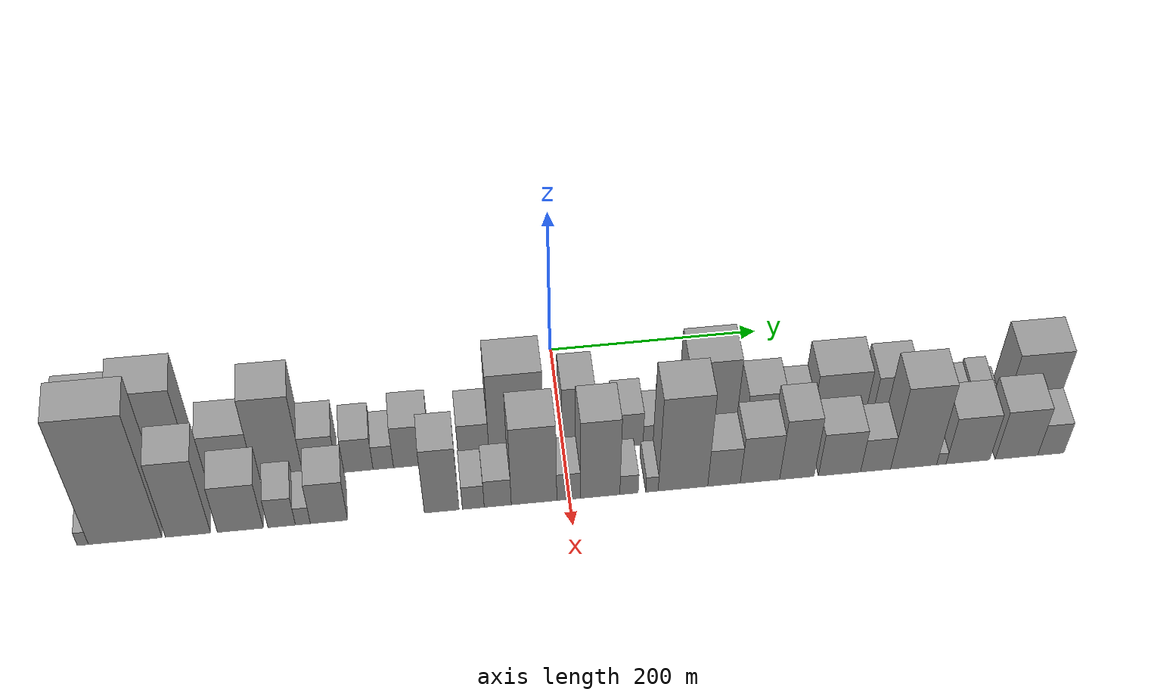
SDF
<sdf version="1.6">
 <world name="default">
  <scene>
   <sky><clouds><speed>12</speed></clouds></sky>
   <ambient>0.4 0.4 0.4 1</ambient>
   <background>0.7 0.7 0.7 1</background>
   <shadows>1</shadows>
  </scene>
  <gravity>0 0 -9.8066</gravity>
  <magnetic_field>6e-06 2.3e-05 -4.2e-05</magnetic_field>
  <physics default="0" name="default_physics" type="ode">
   <ode>
    <solver>
     <type>quick</type>
     <iters>10</iters>
     <sor>1.0</sor>
     <use_dynamic_moi_rescaling>0</use_dynamic_moi_rescaling>
    </solver>
    <constraints>
     <cfm>0</cfm>
     <erp>0.2</erp>
     <contact_max_correcting_vel>100</contact_max_correcting_vel>
     <contact_surface_layer>0.001</contact_surface_layer>
    </constraints>
   </ode>
   <max_step_size>0.004</max_step_size>
   <real_time_factor>1</real_time_factor>
   <real_time_update_rate>250</real_time_update_rate>
  </physics>
  <light name="sun" type="directional">
   <pose>0 0 10 0 0 0</pose>
   <diffuse>0.8 0.8 0.8 1</diffuse>
   <specular>0.2 0.2 0.2 1</specular>
   <attenuation>
    <range>1000</range>
    <constant>0.9</constant>
    <linear>0.01</linear>
    <quadratic>0.001</quadratic>
   </attenuation>
   <direction>-0.5 0.1 -0.9</direction>
  </light>
  <model name="building_1">
   <static>1</static>
   <pose>100.0000 -418.8661 0 0.000000 0.000000 0.000000</pose>
   <link name="link">
    <pose>0 0 66.00 0 0 0</pose>
    <collision name="collision"><geometry><box><size>40.0000 50.2677 132.0000</size></box></geometry></collision>
    <visual name="visual">
     <cast_shadows>0</cast_shadows>
     <geometry><box><size>40.0000 50.2677 132.0000</size></box></geometry>
     <material>
      <script>
       <uri>model://grey_wall/materials/scripts</uri>
       <uri>model://grey_wall/materials/textures</uri>
       <name>vrc/grey_wall</name>
      </script>
     </material>
    </visual>
   </link>
  </model>
  <model name="building_2">
   <static>1</static>
   <pose>100.0000 -366.1265 0 0.000000 0.000000 0.000000</pose>
   <link name="link">
    <pose>0 0 75.00 0 0 0</pose>
    <collision name="collision"><geometry><box><size>40.0000 55.2115 150.0000</size></box></geometry></collision>
    <visual name="visual">
     <cast_shadows>0</cast_shadows>
     <geometry><box><size>40.0000 55.2115 150.0000</size></box></geometry>
     <material>
      <script>
       <uri>model://grey_wall/materials/scripts</uri>
       <uri>model://grey_wall/materials/textures</uri>
       <name>vrc/grey_wall</name>
      </script>
     </material>
    </visual>
   </link>
  </model>
  <model name="building_3">
   <static>1</static>
   <pose>100.0000 -307.1990 0 0.000000 0.000000 0.000000</pose>
   <link name="link">
    <pose>0 0 37.50 0 0 0</pose>
    <collision name="collision"><geometry><box><size>40.0000 44.6435 75.0000</size></box></geometry></collision>
    <visual name="visual">
     <cast_shadows>0</cast_shadows>
     <geometry><box><size>40.0000 44.6435 75.0000</size></box></geometry>
     <material>
      <script>
       <uri>model://grey_wall/materials/scripts</uri>
       <uri>model://grey_wall/materials/textures</uri>
       <name>vrc/grey_wall</name>
      </script>
     </material>
    </visual>
   </link>
  </model>
  <model name="building_4">
   <static>1</static>
   <pose>100.0000 -262.8166 0 0.000000 0.000000 0.000000</pose>
   <link name="link">
    <pose>0 0 63.00 0 0 0</pose>
    <collision name="collision"><geometry><box><size>40.0000 44.1212 126.0000</size></box></geometry></collision>
    <visual name="visual">
     <cast_shadows>0</cast_shadows>
     <geometry><box><size>40.0000 44.1212 126.0000</size></box></geometry>
     <material>
      <script>
       <uri>model://grey_wall/materials/scripts</uri>
       <uri>model://grey_wall/materials/textures</uri>
       <name>vrc/grey_wall</name>
      </script>
     </material>
    </visual>
   </link>
  </model>
  <model name="building_5">
   <static>1</static>
   <pose>100.0000 -225.1736 0 0.000000 0.000000 0.000000</pose>
   <link name="link">
    <pose>0 0 30.00 0 0 0</pose>
    <collision name="collision"><geometry><box><size>40.0000 31.1647 60.0000</size></box></geometry></collision>
    <visual name="visual">
     <cast_shadows>0</cast_shadows>
     <geometry><box><size>40.0000 31.1647 60.0000</size></box></geometry>
     <material>
      <script>
       <uri>model://grey_wall/materials/scripts</uri>
       <uri>model://grey_wall/materials/textures</uri>
       <name>vrc/grey_wall</name>
      </script>
     </material>
    </visual>
   </link>
  </model>
  <model name="building_6">
   <static>1</static>
   <pose>100.0000 -190.0892 0 0.000000 0.000000 0.000000</pose>
   <link name="link">
    <pose>0 0 25.50 0 0 0</pose>
    <collision name="collision"><geometry><box><size>40.0000 27.0042 51.0000</size></box></geometry></collision>
    <visual name="visual">
     <cast_shadows>0</cast_shadows>
     <geometry><box><size>40.0000 27.0042 51.0000</size></box></geometry>
     <material>
      <script>
       <uri>model://grey_wall/materials/scripts</uri>
       <uri>model://grey_wall/materials/textures</uri>
       <name>vrc/grey_wall</name>
      </script>
     </material>
    </visual>
   </link>
  </model>
  <model name="building_7">
   <static>1</static>
   <pose>100.0000 -167.1637 0 0.000000 0.000000 0.000000</pose>
   <link name="link">
    <pose>0 0 18.00 0 0 0</pose>
    <collision name="collision"><geometry><box><size>40.0000 18.8467 36.0000</size></box></geometry></collision>
    <visual name="visual">
     <cast_shadows>0</cast_shadows>
     <geometry><box><size>40.0000 18.8467 36.0000</size></box></geometry>
     <material>
      <script>
       <uri>model://grey_wall/materials/scripts</uri>
       <uri>model://grey_wall/materials/textures</uri>
       <name>vrc/grey_wall</name>
      </script>
     </material>
    </visual>
   </link>
  </model>
  <model name="building_8">
   <static>1</static>
   <pose>100.0000 -140.6200 0 0.000000 0.000000 0.000000</pose>
   <link name="link">
    <pose>0 0 31.50 0 0 0</pose>
    <collision name="collision"><geometry><box><size>40.0000 34.2407 63.0000</size></box></geometry></collision>
    <visual name="visual">
     <cast_shadows>0</cast_shadows>
     <geometry><box><size>40.0000 34.2407 63.0000</size></box></geometry>
     <material>
      <script>
       <uri>model://grey_wall/materials/scripts</uri>
       <uri>model://grey_wall/materials/textures</uri>
       <name>vrc/grey_wall</name>
      </script>
     </material>
    </visual>
   </link>
  </model>
  <model name="building_9">
   <static>1</static>
   <pose>100.0000 -108.0192 0 0.000000 0.000000 0.000000</pose>
   <link name="link">
    <pose>0 0 12.00 0 0 0</pose>
    <collision name="collision"><geometry><box><size>40.0000 10.9609 24.0000</size></box></geometry></collision>
    <visual name="visual">
     <cast_shadows>0</cast_shadows>
     <geometry><box><size>40.0000 10.9609 24.0000</size></box></geometry>
     <material>
      <script>
       <uri>model://grey_wall/materials/scripts</uri>
       <uri>model://grey_wall/materials/textures</uri>
       <name>vrc/grey_wall</name>
      </script>
     </material>
    </visual>
   </link>
  </model>
  <model name="building_10">
   <static>1</static>
   <pose>100.0000 -83.2711 0 0.000000 0.000000 0.000000</pose>
   <link name="link">
    <pose>0 0 28.50 0 0 0</pose>
    <collision name="collision"><geometry><box><size>40.0000 28.5353 57.0000</size></box></geometry></collision>
    <visual name="visual">
     <cast_shadows>0</cast_shadows>
     <geometry><box><size>40.0000 28.5353 57.0000</size></box></geometry>
     <material>
      <script>
       <uri>model://grey_wall/materials/scripts</uri>
       <uri>model://grey_wall/materials/textures</uri>
       <name>vrc/grey_wall</name>
      </script>
     </material>
    </visual>
   </link>
  </model>
  <model name="building_11">
   <static>1</static>
   <pose>100.0000 -43.7940 0 0.000000 0.000000 0.000000</pose>
   <link name="link">
    <pose>0 0 64.50 0 0 0</pose>
    <collision name="collision"><geometry><box><size>40.0000 50.4190 129.0000</size></box></geometry></collision>
    <visual name="visual">
     <cast_shadows>0</cast_shadows>
     <geometry><box><size>40.0000 50.4190 129.0000</size></box></geometry>
     <material>
      <script>
       <uri>model://grey_wall/materials/scripts</uri>
       <uri>model://grey_wall/materials/textures</uri>
       <name>vrc/grey_wall</name>
      </script>
     </material>
    </visual>
   </link>
  </model>
  <model name="building_12">
   <static>1</static>
   <pose>100.0000 -13.0866 0 0.000000 0.000000 0.000000</pose>
   <link name="link">
    <pose>0 0 12.00 0 0 0</pose>
    <collision name="collision"><geometry><box><size>40.0000 10.9957 24.0000</size></box></geometry></collision>
    <visual name="visual">
     <cast_shadows>0</cast_shadows>
     <geometry><box><size>40.0000 10.9957 24.0000</size></box></geometry>
     <material>
      <script>
       <uri>model://grey_wall/materials/scripts</uri>
       <uri>model://grey_wall/materials/textures</uri>
       <name>vrc/grey_wall</name>
      </script>
     </material>
    </visual>
   </link>
  </model>
  <model name="building_13">
   <static>1</static>
   <pose>100.0000 13.6161 0 0.000000 0.000000 0.000000</pose>
   <link name="link">
    <pose>0 0 49.50 0 0 0</pose>
    <collision name="collision"><geometry><box><size>40.0000 30.4097 99.0000</size></box></geometry></collision>
    <visual name="visual">
     <cast_shadows>0</cast_shadows>
     <geometry><box><size>40.0000 30.4097 99.0000</size></box></geometry>
     <material>
      <script>
       <uri>model://grey_wall/materials/scripts</uri>
       <uri>model://grey_wall/materials/textures</uri>
       <name>vrc/grey_wall</name>
      </script>
     </material>
    </visual>
   </link>
  </model>
  <model name="building_14">
   <static>1</static>
   <pose>100.0000 37.8365 0 0.000000 0.000000 0.000000</pose>
   <link name="link">
    <pose>0 0 18.00 0 0 0</pose>
    <collision name="collision"><geometry><box><size>40.0000 18.0312 36.0000</size></box></geometry></collision>
    <visual name="visual">
     <cast_shadows>0</cast_shadows>
     <geometry><box><size>40.0000 18.0312 36.0000</size></box></geometry>
     <material>
      <script>
       <uri>model://grey_wall/materials/scripts</uri>
       <uri>model://grey_wall/materials/textures</uri>
       <name>vrc/grey_wall</name>
      </script>
     </material>
    </visual>
   </link>
  </model>
  <model name="building_15">
   <static>1</static>
   <pose>100.0000 60.6274 0 0.000000 0.000000 0.000000</pose>
   <link name="link">
    <pose>0 0 25.50 0 0 0</pose>
    <collision name="collision"><geometry><box><size>40.0000 27.5505 51.0000</size></box></geometry></collision>
    <visual name="visual">
     <cast_shadows>0</cast_shadows>
     <geometry><box><size>40.0000 27.5505 51.0000</size></box></geometry>
     <material>
      <script>
       <uri>model://grey_wall/materials/scripts</uri>
       <uri>model://grey_wall/materials/textures</uri>
       <name>vrc/grey_wall</name>
      </script>
     </material>
    </visual>
   </link>
  </model>
  <model name="building_16">
   <static>1</static>
   <pose>100.0000 82.7552 0 0.000000 0.000000 0.000000</pose>
   <link name="link">
    <pose>0 0 15.00 0 0 0</pose>
    <collision name="collision"><geometry><box><size>40.0000 16.7052 30.0000</size></box></geometry></collision>
    <visual name="visual">
     <cast_shadows>0</cast_shadows>
     <geometry><box><size>40.0000 16.7052 30.0000</size></box></geometry>
     <material>
      <script>
       <uri>model://grey_wall/materials/scripts</uri>
       <uri>model://grey_wall/materials/textures</uri>
       <name>vrc/grey_wall</name>
      </script>
     </material>
    </visual>
   </link>
  </model>
  <model name="building_17">
   <static>1</static>
   <pose>100.0000 101.9925 0 0.000000 0.000000 0.000000</pose>
   <link name="link">
    <pose>0 0 19.50 0 0 0</pose>
    <collision name="collision"><geometry><box><size>40.0000 21.7692 39.0000</size></box></geometry></collision>
    <visual name="visual">
     <cast_shadows>0</cast_shadows>
     <geometry><box><size>40.0000 21.7692 39.0000</size></box></geometry>
     <material>
      <script>
       <uri>model://grey_wall/materials/scripts</uri>
       <uri>model://grey_wall/materials/textures</uri>
       <name>vrc/grey_wall</name>
      </script>
     </material>
    </visual>
   </link>
  </model>
  <model name="building_18">
   <static>1</static>
   <pose>100.0000 136.7933 0 0.000000 0.000000 0.000000</pose>
   <link name="link">
    <pose>0 0 60.00 0 0 0</pose>
    <collision name="collision"><geometry><box><size>40.0000 47.8324 120.0000</size></box></geometry></collision>
    <visual name="visual">
     <cast_shadows>0</cast_shadows>
     <geometry><box><size>40.0000 47.8324 120.0000</size></box></geometry>
     <material>
      <script>
       <uri>model://grey_wall/materials/scripts</uri>
       <uri>model://grey_wall/materials/textures</uri>
       <name>vrc/grey_wall</name>
      </script>
     </material>
    </visual>
   </link>
  </model>
  <model name="building_19">
   <static>1</static>
   <pose>100.0000 188.5553 0 0.000000 0.000000 0.000000</pose>
   <link name="link">
    <pose>0 0 31.50 0 0 0</pose>
    <collision name="collision"><geometry><box><size>40.0000 35.6916 63.0000</size></box></geometry></collision>
    <visual name="visual">
     <cast_shadows>0</cast_shadows>
     <geometry><box><size>40.0000 35.6916 63.0000</size></box></geometry>
     <material>
      <script>
       <uri>model://grey_wall/materials/scripts</uri>
       <uri>model://grey_wall/materials/textures</uri>
       <name>vrc/grey_wall</name>
      </script>
     </material>
    </visual>
   </link>
  </model>
  <model name="building_20">
   <static>1</static>
   <pose>100.0000 219.6502 0 0.000000 0.000000 0.000000</pose>
   <link name="link">
    <pose>0 0 24.00 0 0 0</pose>
    <collision name="collision"><geometry><box><size>40.0000 26.4983 48.0000</size></box></geometry></collision>
    <visual name="visual">
     <cast_shadows>0</cast_shadows>
     <geometry><box><size>40.0000 26.4983 48.0000</size></box></geometry>
     <material>
      <script>
       <uri>model://grey_wall/materials/scripts</uri>
       <uri>model://grey_wall/materials/textures</uri>
       <name>vrc/grey_wall</name>
      </script>
     </material>
    </visual>
   </link>
  </model>
  <model name="building_21">
   <static>1</static>
   <pose>100.0000 257.8796 0 0.000000 0.000000 0.000000</pose>
   <link name="link">
    <pose>0 0 42.00 0 0 0</pose>
    <collision name="collision"><geometry><box><size>40.0000 49.9606 84.0000</size></box></geometry></collision>
    <visual name="visual">
     <cast_shadows>0</cast_shadows>
     <geometry><box><size>40.0000 49.9606 84.0000</size></box></geometry>
     <material>
      <script>
       <uri>model://grey_wall/materials/scripts</uri>
       <uri>model://grey_wall/materials/textures</uri>
       <name>vrc/grey_wall</name>
      </script>
     </material>
    </visual>
   </link>
  </model>
  <model name="building_22">
   <static>1</static>
   <pose>100.0000 308.6367 0 0.000000 0.000000 0.000000</pose>
   <link name="link">
    <pose>0 0 36.00 0 0 0</pose>
    <collision name="collision"><geometry><box><size>40.0000 37.5536 72.0000</size></box></geometry></collision>
    <visual name="visual">
     <cast_shadows>0</cast_shadows>
     <geometry><box><size>40.0000 37.5536 72.0000</size></box></geometry>
     <material>
      <script>
       <uri>model://grey_wall/materials/scripts</uri>
       <uri>model://grey_wall/materials/textures</uri>
       <name>vrc/grey_wall</name>
      </script>
     </material>
    </visual>
   </link>
  </model>
  <model name="building_23">
   <static>1</static>
   <pose>100.0000 347.7771 0 0.000000 0.000000 0.000000</pose>
   <link name="link">
    <pose>0 0 24.00 0 0 0</pose>
    <collision name="collision"><geometry><box><size>40.0000 28.7272 48.0000</size></box></geometry></collision>
    <visual name="visual">
     <cast_shadows>0</cast_shadows>
     <geometry><box><size>40.0000 28.7272 48.0000</size></box></geometry>
     <material>
      <script>
       <uri>model://grey_wall/materials/scripts</uri>
       <uri>model://grey_wall/materials/textures</uri>
       <name>vrc/grey_wall</name>
      </script>
     </material>
    </visual>
   </link>
  </model>
  <model name="building_24">
   <static>1</static>
   <pose>100.0000 374.4131 0 0.000000 0.000000 0.000000</pose>
   <link name="link">
    <pose>0 0 15.00 0 0 0</pose>
    <collision name="collision"><geometry><box><size>40.0000 16.5447 30.0000</size></box></geometry></collision>
    <visual name="visual">
     <cast_shadows>0</cast_shadows>
     <geometry><box><size>40.0000 16.5447 30.0000</size></box></geometry>
     <material>
      <script>
       <uri>model://grey_wall/materials/scripts</uri>
       <uri>model://grey_wall/materials/textures</uri>
       <name>vrc/grey_wall</name>
      </script>
     </material>
    </visual>
   </link>
  </model>
  <model name="building_25">
   <static>1</static>
   <pose>100.0000 393.1155 0 0.000000 0.000000 0.000000</pose>
   <link name="link">
    <pose>0 0 18.00 0 0 0</pose>
    <collision name="collision"><geometry><box><size>40.0000 20.8601 36.0000</size></box></geometry></collision>
    <visual name="visual">
     <cast_shadows>0</cast_shadows>
     <geometry><box><size>40.0000 20.8601 36.0000</size></box></geometry>
     <material>
      <script>
       <uri>model://grey_wall/materials/scripts</uri>
       <uri>model://grey_wall/materials/textures</uri>
       <name>vrc/grey_wall</name>
      </script>
     </material>
    </visual>
   </link>
  </model>
  <model name="building_26">
   <static>1</static>
   <pose>100.0000 407.8156 0 0.000000 0.000000 0.000000</pose>
   <link name="link">
    <pose>0 0 9.00 0 0 0</pose>
    <collision name="collision"><geometry><box><size>40.0000 8.5401 18.0000</size></box></geometry></collision>
    <visual name="visual">
     <cast_shadows>0</cast_shadows>
     <geometry><box><size>40.0000 8.5401 18.0000</size></box></geometry>
     <material>
      <script>
       <uri>model://grey_wall/materials/scripts</uri>
       <uri>model://grey_wall/materials/textures</uri>
       <name>vrc/grey_wall</name>
      </script>
     </material>
    </visual>
   </link>
  </model>
  <model name="building_27">
   <static>1</static>
   <pose>100.0000 443.5218 0 0.000000 0.000000 0.000000</pose>
   <link name="link">
    <pose>0 0 43.50 0 0 0</pose>
    <collision name="collision"><geometry><box><size>40.0000 50.8722 87.0000</size></box></geometry></collision>
    <visual name="visual">
     <cast_shadows>0</cast_shadows>
     <geometry><box><size>40.0000 50.8722 87.0000</size></box></geometry>
     <material>
      <script>
       <uri>model://grey_wall/materials/scripts</uri>
       <uri>model://grey_wall/materials/textures</uri>
       <name>vrc/grey_wall</name>
      </script>
     </material>
    </visual>
   </link>
  </model>
  <model name="building_28">
   <static>1</static>
   <pose>152.0000 -439.0589 0 0.000000 0.000000 0.000000</pose>
   <link name="link">
    <pose>0 0 10.50 0 0 0</pose>
    <collision name="collision"><geometry><box><size>40.0000 9.8821 21.0000</size></box></geometry></collision>
    <visual name="visual">
     <cast_shadows>0</cast_shadows>
     <geometry><box><size>40.0000 9.8821 21.0000</size></box></geometry>
     <material>
      <script>
       <uri>model://grey_wall/materials/scripts</uri>
       <uri>model://grey_wall/materials/textures</uri>
       <name>vrc/grey_wall</name>
      </script>
     </material>
    </visual>
   </link>
  </model>
  <model name="building_29">
   <static>1</static>
   <pose>152.0000 -401.3434 0 0.000000 0.000000 0.000000</pose>
   <link name="link">
    <pose>0 0 96.00 0 0 0</pose>
    <collision name="collision"><geometry><box><size>40.0000 65.5489 192.0000</size></box></geometry></collision>
    <visual name="visual">
     <cast_shadows>0</cast_shadows>
     <geometry><box><size>40.0000 65.5489 192.0000</size></box></geometry>
     <material>
      <script>
       <uri>model://grey_wall/materials/scripts</uri>
       <uri>model://grey_wall/materials/textures</uri>
       <name>vrc/grey_wall</name>
      </script>
     </material>
    </visual>
   </link>
  </model>
  <model name="building_30">
   <static>1</static>
   <pose>152.0000 -345.3657 0 0.000000 0.000000 0.000000</pose>
   <link name="link">
    <pose>0 0 58.50 0 0 0</pose>
    <collision name="collision"><geometry><box><size>40.0000 40.4066 117.0000</size></box></geometry></collision>
    <visual name="visual">
     <cast_shadows>0</cast_shadows>
     <geometry><box><size>40.0000 40.4066 117.0000</size></box></geometry>
     <material>
      <script>
       <uri>model://grey_wall/materials/scripts</uri>
       <uri>model://grey_wall/materials/textures</uri>
       <name>vrc/grey_wall</name>
      </script>
     </material>
    </visual>
   </link>
  </model>
  <model name="building_31">
   <static>1</static>
   <pose>152.0000 -298.5178 0 0.000000 0.000000 0.000000</pose>
   <link name="link">
    <pose>0 0 36.00 0 0 0</pose>
    <collision name="collision"><geometry><box><size>40.0000 41.2891 72.0000</size></box></geometry></collision>
    <visual name="visual">
     <cast_shadows>0</cast_shadows>
     <geometry><box><size>40.0000 41.2891 72.0000</size></box></geometry>
     <material>
      <script>
       <uri>model://grey_wall/materials/scripts</uri>
       <uri>model://grey_wall/materials/textures</uri>
       <name>vrc/grey_wall</name>
      </script>
     </material>
    </visual>
   </link>
  </model>
  <model name="building_32">
   <static>1</static>
   <pose>152.0000 -261.5021 0 0.000000 0.000000 0.000000</pose>
   <link name="link">
    <pose>0 0 22.50 0 0 0</pose>
    <collision name="collision"><geometry><box><size>40.0000 24.7425 45.0000</size></box></geometry></collision>
    <visual name="visual">
     <cast_shadows>0</cast_shadows>
     <geometry><box><size>40.0000 24.7425 45.0000</size></box></geometry>
     <material>
      <script>
       <uri>model://grey_wall/materials/scripts</uri>
       <uri>model://grey_wall/materials/textures</uri>
       <name>vrc/grey_wall</name>
      </script>
     </material>
    </visual>
   </link>
  </model>
  <model name="building_33">
   <static>1</static>
   <pose>152.0000 -242.4045 0 0.000000 0.000000 0.000000</pose>
   <link name="link">
    <pose>0 0 13.50 0 0 0</pose>
    <collision name="collision"><geometry><box><size>40.0000 13.4527 27.0000</size></box></geometry></collision>
    <visual name="visual">
     <cast_shadows>0</cast_shadows>
     <geometry><box><size>40.0000 13.4527 27.0000</size></box></geometry>
     <material>
      <script>
       <uri>model://grey_wall/materials/scripts</uri>
       <uri>model://grey_wall/materials/textures</uri>
       <name>vrc/grey_wall</name>
      </script>
     </material>
    </visual>
   </link>
  </model>
  <model name="building_34">
   <static>1</static>
   <pose>152.0000 -218.8720 0 0.000000 0.000000 0.000000</pose>
   <link name="link">
    <pose>0 0 31.50 0 0 0</pose>
    <collision name="collision"><geometry><box><size>40.0000 33.6124 63.0000</size></box></geometry></collision>
    <visual name="visual">
     <cast_shadows>0</cast_shadows>
     <geometry><box><size>40.0000 33.6124 63.0000</size></box></geometry>
     <material>
      <script>
       <uri>model://grey_wall/materials/scripts</uri>
       <uri>model://grey_wall/materials/textures</uri>
       <name>vrc/grey_wall</name>
      </script>
     </material>
    </visual>
   </link>
  </model>
  <model name="building_35">
   <static>1</static>
   <pose>152.0000 -116.7477 0 0.000000 0.000000 0.000000</pose>
   <link name="link">
    <pose>0 0 49.50 0 0 0</pose>
    <collision name="collision"><geometry><box><size>40.0000 31.5454 99.0000</size></box></geometry></collision>
    <visual name="visual">
     <cast_shadows>0</cast_shadows>
     <geometry><box><size>40.0000 31.5454 99.0000</size></box></geometry>
     <material>
      <script>
       <uri>model://grey_wall/materials/scripts</uri>
       <uri>model://grey_wall/materials/textures</uri>
       <name>vrc/grey_wall</name>
      </script>
     </material>
    </visual>
   </link>
  </model>
  <model name="building_36">
   <static>1</static>
   <pose>152.0000 -88.0274 0 0.000000 0.000000 0.000000</pose>
   <link name="link">
    <pose>0 0 18.00 0 0 0</pose>
    <collision name="collision"><geometry><box><size>40.0000 19.8953 36.0000</size></box></geometry></collision>
    <visual name="visual">
     <cast_shadows>0</cast_shadows>
     <geometry><box><size>40.0000 19.8953 36.0000</size></box></geometry>
     <material>
      <script>
       <uri>model://grey_wall/materials/scripts</uri>
       <uri>model://grey_wall/materials/textures</uri>
       <name>vrc/grey_wall</name>
      </script>
     </material>
    </visual>
   </link>
  </model>
  <model name="building_37">
   <static>1</static>
   <pose>152.0000 -65.7136 0 0.000000 0.000000 0.000000</pose>
   <link name="link">
    <pose>0 0 21.00 0 0 0</pose>
    <collision name="collision"><geometry><box><size>40.0000 24.7322 42.0000</size></box></geometry></collision>
    <visual name="visual">
     <cast_shadows>0</cast_shadows>
     <geometry><box><size>40.0000 24.7322 42.0000</size></box></geometry>
     <material>
      <script>
       <uri>model://grey_wall/materials/scripts</uri>
       <uri>model://grey_wall/materials/textures</uri>
       <name>vrc/grey_wall</name>
      </script>
     </material>
    </visual>
   </link>
  </model>
  <model name="building_38">
   <static>1</static>
   <pose>152.0000 -32.5519 0 0.000000 0.000000 0.000000</pose>
   <link name="link">
    <pose>0 0 60.00 0 0 0</pose>
    <collision name="collision"><geometry><box><size>40.0000 41.5913 120.0000</size></box></geometry></collision>
    <visual name="visual">
     <cast_shadows>0</cast_shadows>
     <geometry><box><size>40.0000 41.5913 120.0000</size></box></geometry>
     <material>
      <script>
       <uri>model://grey_wall/materials/scripts</uri>
       <uri>model://grey_wall/materials/textures</uri>
       <name>vrc/grey_wall</name>
      </script>
     </material>
    </visual>
   </link>
  </model>
  <model name="building_39">
   <static>1</static>
   <pose>152.0000 -0.9858 0 0.000000 0.000000 0.000000</pose>
   <link name="link">
    <pose>0 0 21.00 0 0 0</pose>
    <collision name="collision"><geometry><box><size>40.0000 21.5408 42.0000</size></box></geometry></collision>
    <visual name="visual">
     <cast_shadows>0</cast_shadows>
     <geometry><box><size>40.0000 21.5408 42.0000</size></box></geometry>
     <material>
      <script>
       <uri>model://grey_wall/materials/scripts</uri>
       <uri>model://grey_wall/materials/textures</uri>
       <name>vrc/grey_wall</name>
      </script>
     </material>
    </visual>
   </link>
  </model>
  <model name="building_40">
   <static>1</static>
   <pose>152.0000 27.9602 0 0.000000 0.000000 0.000000</pose>
   <link name="link">
    <pose>0 0 60.00 0 0 0</pose>
    <collision name="collision"><geometry><box><size>40.0000 36.3512 120.0000</size></box></geometry></collision>
    <visual name="visual">
     <cast_shadows>0</cast_shadows>
     <geometry><box><size>40.0000 36.3512 120.0000</size></box></geometry>
     <material>
      <script>
       <uri>model://grey_wall/materials/scripts</uri>
       <uri>model://grey_wall/materials/textures</uri>
       <name>vrc/grey_wall</name>
      </script>
     </material>
    </visual>
   </link>
  </model>
  <model name="building_41">
   <static>1</static>
   <pose>152.0000 54.6084 0 0.000000 0.000000 0.000000</pose>
   <link name="link">
    <pose>0 0 15.00 0 0 0</pose>
    <collision name="collision"><geometry><box><size>40.0000 16.9452 30.0000</size></box></geometry></collision>
    <visual name="visual">
     <cast_shadows>0</cast_shadows>
     <geometry><box><size>40.0000 16.9452 30.0000</size></box></geometry>
     <material>
      <script>
       <uri>model://grey_wall/materials/scripts</uri>
       <uri>model://grey_wall/materials/textures</uri>
       <name>vrc/grey_wall</name>
      </script>
     </material>
    </visual>
   </link>
  </model>
  <model name="building_42">
   <static>1</static>
   <pose>152.0000 75.8098 0 0.000000 0.000000 0.000000</pose>
   <link name="link">
    <pose>0 0 12.00 0 0 0</pose>
    <collision name="collision"><geometry><box><size>40.0000 11.4576 24.0000</size></box></geometry></collision>
    <visual name="visual">
     <cast_shadows>0</cast_shadows>
     <geometry><box><size>40.0000 11.4576 24.0000</size></box></geometry>
     <material>
      <script>
       <uri>model://grey_wall/materials/scripts</uri>
       <uri>model://grey_wall/materials/textures</uri>
       <name>vrc/grey_wall</name>
      </script>
     </material>
    </visual>
   </link>
  </model>
  <model name="building_43">
   <static>1</static>
   <pose>152.0000 104.4448 0 0.000000 0.000000 0.000000</pose>
   <link name="link">
    <pose>0 0 72.00 0 0 0</pose>
    <collision name="collision"><geometry><box><size>40.0000 45.8125 144.0000</size></box></geometry></collision>
    <visual name="visual">
     <cast_shadows>0</cast_shadows>
     <geometry><box><size>40.0000 45.8125 144.0000</size></box></geometry>
     <material>
      <script>
       <uri>model://grey_wall/materials/scripts</uri>
       <uri>model://grey_wall/materials/textures</uri>
       <name>vrc/grey_wall</name>
      </script>
     </material>
    </visual>
   </link>
  </model>
  <model name="building_44">
   <static>1</static>
   <pose>152.0000 142.4208 0 0.000000 0.000000 0.000000</pose>
   <link name="link">
    <pose>0 0 28.50 0 0 0</pose>
    <collision name="collision"><geometry><box><size>40.0000 30.1395 57.0000</size></box></geometry></collision>
    <visual name="visual">
     <cast_shadows>0</cast_shadows>
     <geometry><box><size>40.0000 30.1395 57.0000</size></box></geometry>
     <material>
      <script>
       <uri>model://grey_wall/materials/scripts</uri>
       <uri>model://grey_wall/materials/textures</uri>
       <name>vrc/grey_wall</name>
      </script>
     </material>
    </visual>
   </link>
  </model>
  <model name="building_45">
   <static>1</static>
   <pose>152.0000 175.8101 0 0.000000 0.000000 0.000000</pose>
   <link name="link">
    <pose>0 0 36.00 0 0 0</pose>
    <collision name="collision"><geometry><box><size>40.0000 36.6391 72.0000</size></box></geometry></collision>
    <visual name="visual">
     <cast_shadows>0</cast_shadows>
     <geometry><box><size>40.0000 36.6391 72.0000</size></box></geometry>
     <material>
      <script>
       <uri>model://grey_wall/materials/scripts</uri>
       <uri>model://grey_wall/materials/textures</uri>
       <name>vrc/grey_wall</name>
      </script>
     </material>
    </visual>
   </link>
  </model>
  <model name="building_46">
   <static>1</static>
   <pose>152.0000 210.2056 0 0.000000 0.000000 0.000000</pose>
   <link name="link">
    <pose>0 0 46.50 0 0 0</pose>
    <collision name="collision"><geometry><box><size>40.0000 32.1518 93.0000</size></box></geometry></collision>
    <visual name="visual">
     <cast_shadows>0</cast_shadows>
     <geometry><box><size>40.0000 32.1518 93.0000</size></box></geometry>
     <material>
      <script>
       <uri>model://grey_wall/materials/scripts</uri>
       <uri>model://grey_wall/materials/textures</uri>
       <name>vrc/grey_wall</name>
      </script>
     </material>
    </visual>
   </link>
  </model>
  <model name="building_47">
   <static>1</static>
   <pose>152.0000 250.0359 0 0.000000 0.000000 0.000000</pose>
   <link name="link">
    <pose>0 0 33.00 0 0 0</pose>
    <collision name="collision"><geometry><box><size>40.0000 39.5088 66.0000</size></box></geometry></collision>
    <visual name="visual">
     <cast_shadows>0</cast_shadows>
     <geometry><box><size>40.0000 39.5088 66.0000</size></box></geometry>
     <material>
      <script>
       <uri>model://grey_wall/materials/scripts</uri>
       <uri>model://grey_wall/materials/textures</uri>
       <name>vrc/grey_wall</name>
      </script>
     </material>
    </visual>
   </link>
  </model>
  <model name="building_48">
   <static>1</static>
   <pose>152.0000 283.8736 0 0.000000 0.000000 0.000000</pose>
   <link name="link">
    <pose>0 0 25.50 0 0 0</pose>
    <collision name="collision"><geometry><box><size>40.0000 28.1666 51.0000</size></box></geometry></collision>
    <visual name="visual">
     <cast_shadows>0</cast_shadows>
     <geometry><box><size>40.0000 28.1666 51.0000</size></box></geometry>
     <material>
      <script>
       <uri>model://grey_wall/materials/scripts</uri>
       <uri>model://grey_wall/materials/textures</uri>
       <name>vrc/grey_wall</name>
      </script>
     </material>
    </visual>
   </link>
  </model>
  <model name="building_49">
   <static>1</static>
   <pose>152.0000 319.5860 0 0.000000 0.000000 0.000000</pose>
   <link name="link">
    <pose>0 0 63.00 0 0 0</pose>
    <collision name="collision"><geometry><box><size>40.0000 43.2581 126.0000</size></box></geometry></collision>
    <visual name="visual">
     <cast_shadows>0</cast_shadows>
     <geometry><box><size>40.0000 43.2581 126.0000</size></box></geometry>
     <material>
      <script>
       <uri>model://grey_wall/materials/scripts</uri>
       <uri>model://grey_wall/materials/textures</uri>
       <name>vrc/grey_wall</name>
      </script>
     </material>
    </visual>
   </link>
  </model>
  <model name="building_50">
   <static>1</static>
   <pose>152.0000 345.6651 0 0.000000 0.000000 0.000000</pose>
   <link name="link">
    <pose>0 0 9.00 0 0 0</pose>
    <collision name="collision"><geometry><box><size>40.0000 8.9001 18.0000</size></box></geometry></collision>
    <visual name="visual">
     <cast_shadows>0</cast_shadows>
     <geometry><box><size>40.0000 8.9001 18.0000</size></box></geometry>
     <material>
      <script>
       <uri>model://grey_wall/materials/scripts</uri>
       <uri>model://grey_wall/materials/textures</uri>
       <name>vrc/grey_wall</name>
      </script>
     </material>
    </visual>
   </link>
  </model>
  <model name="building_51">
   <static>1</static>
   <pose>152.0000 370.7512 0 0.000000 0.000000 0.000000</pose>
   <link name="link">
    <pose>0 0 36.00 0 0 0</pose>
    <collision name="collision"><geometry><box><size>40.0000 41.2721 72.0000</size></box></geometry></collision>
    <visual name="visual">
     <cast_shadows>0</cast_shadows>
     <geometry><box><size>40.0000 41.2721 72.0000</size></box></geometry>
     <material>
      <script>
       <uri>model://grey_wall/materials/scripts</uri>
       <uri>model://grey_wall/materials/textures</uri>
       <name>vrc/grey_wall</name>
      </script>
     </material>
    </visual>
   </link>
  </model>
  <model name="building_52">
   <static>1</static>
   <pose>152.0000 416.5624 0 0.000000 0.000000 0.000000</pose>
   <link name="link">
    <pose>0 0 37.50 0 0 0</pose>
    <collision name="collision"><geometry><box><size>40.0000 40.3503 75.0000</size></box></geometry></collision>
    <visual name="visual">
     <cast_shadows>0</cast_shadows>
     <geometry><box><size>40.0000 40.3503 75.0000</size></box></geometry>
     <material>
      <script>
       <uri>model://grey_wall/materials/scripts</uri>
       <uri>model://grey_wall/materials/textures</uri>
       <name>vrc/grey_wall</name>
      </script>
     </material>
    </visual>
   </link>
  </model>
  <model name="building_53">
   <static>1</static>
   <pose>152.0000 449.2008 0 0.000000 0.000000 0.000000</pose>
   <link name="link">
    <pose>0 0 24.00 0 0 0</pose>
    <collision name="collision"><geometry><box><size>40.0000 24.9264 48.0000</size></box></geometry></collision>
    <visual name="visual">
     <cast_shadows>0</cast_shadows>
     <geometry><box><size>40.0000 24.9264 48.0000</size></box></geometry>
     <material>
      <script>
       <uri>model://grey_wall/materials/scripts</uri>
       <uri>model://grey_wall/materials/textures</uri>
       <name>vrc/grey_wall</name>
      </script>
     </material>
    </visual>
   </link>
  </model>
 </world>
</sdf>
